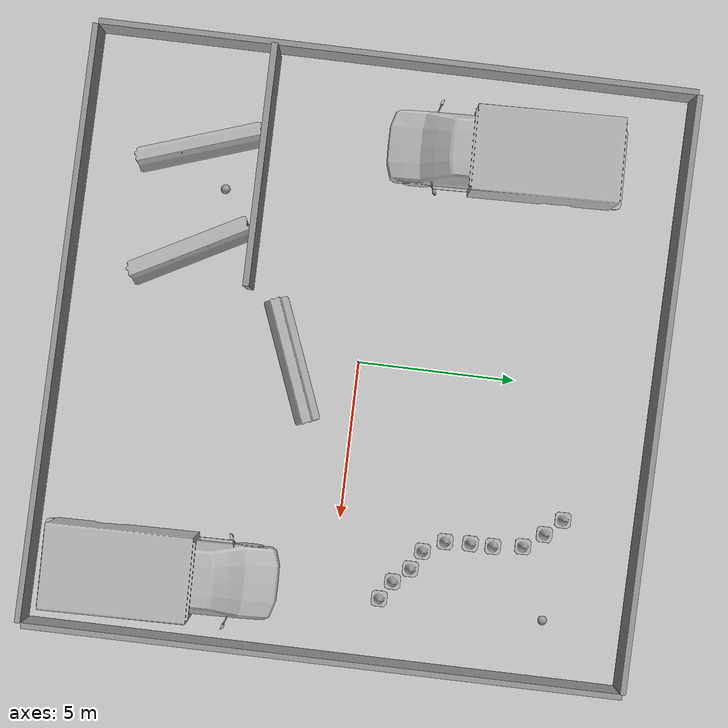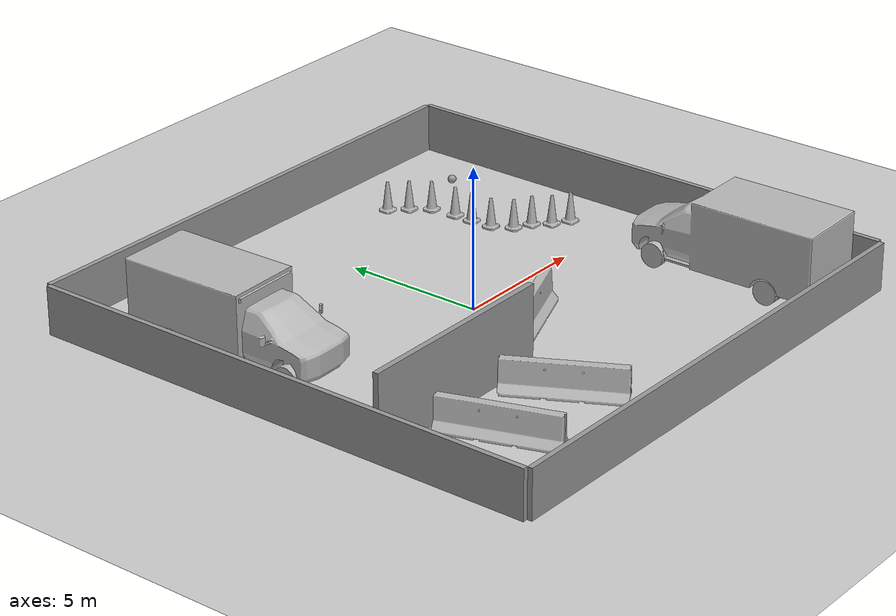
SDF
<sdf version="1.6">
 <world name="default">
  <light name="sun" type="directional">
   <pose>0 0 10 0 -0 0</pose>
   <diffuse>0.8 0.8 0.8 1</diffuse>
   <specular>0.2 0.2 0.2 1</specular>
   <attenuation>
    <range>1000</range>
    <constant>0.9</constant>
    <linear>0.01</linear>
    <quadratic>0.001</quadratic>
   </attenuation>
   <direction>-0.5 0.1 -0.9</direction>
  </light>
  <model name="ground_plane">
   <static>1</static>
   <link name="link">
    <collision name="collision">
     <geometry><plane><normal>0 0 1</normal><size>100 100</size></plane></geometry>
     <surface>
      <contact><collide_bitmask>65535</collide_bitmask></contact>
      <friction><ode><mu>100</mu><mu2>50</mu2></ode></friction>
     </surface>
    </collision>
    <visual name="visual">
     <cast_shadows>0</cast_shadows>
     <geometry><plane><normal>0 0 1</normal><size>100 100</size></plane></geometry>
     <material>
      <script><uri>file://media/materials/scripts/gazebo.material</uri><name>Gazebo/Grey</name></script>
     </material>
    </visual>
   </link>
  </model>
  <gravity>0 0 -9.8</gravity>
  <magnetic_field>6e-06 2.3e-05 -4.2e-05</magnetic_field>
  <atmosphere type="adiabatic"/>
  <physics name="default_physics" default="0" type="ode">
   <max_step_size>0.001</max_step_size>
   <real_time_factor>1</real_time_factor>
   <real_time_update_rate>1000</real_time_update_rate>
  </physics>
  <scene><ambient>0.4 0.4 0.4 1</ambient><background>0.7 0.7 0.7 1</background><shadows>1</shadows></scene>
  <audio><device>default</device></audio>
  <spherical_coordinates>
   <surface_model>EARTH_WGS84</surface_model>
   <latitude_deg>0</latitude_deg>
   <longitude_deg>0</longitude_deg>
   <elevation>0</elevation>
   <heading_deg>0</heading_deg>
  </spherical_coordinates>
  <model name="Confined_Area_20x20">
   <link name="link_1">
    <inertial>
     <mass>44564.1</mass>
     <inertia>
      <ixx>1.32603e+06</ixx>
      <ixy>0</ixy>
      <ixz>0</ixz>
      <iyy>11089.5</iyy>
      <iyz>0</iyz>
      <izz>1.31519e+06</izz>
     </inertia>
    </inertial>
    <pose>-6.97407 -1.86948 0 0 -0 0</pose>
    <visual name="visual">
     <geometry><box><size>0.181322 18.8179 1.7185</size></box></geometry>
     <material>
      <lighting>1</lighting>
      <script><uri>file://media/materials/scripts/gazebo.material</uri><name>Gazebo/Grey</name></script>
      <shader type="vertex"><normal_map>__default__</normal_map></shader>
     </material>
    </visual>
    <collision name="collision">
     <geometry><box><size>0.181322 18.8179 1.7185</size></box></geometry>
     <surface>
      <friction>
       <ode><mu>1</mu><mu2>1</mu2><fdir1>0 0 0</fdir1><slip1>0</slip1><slip2>0</slip2></ode>
       <torsional>
        <coefficient>1</coefficient>
        <patch_radius>0</patch_radius>
        <surface_radius>0</surface_radius>
        <use_patch_radius>1</use_patch_radius>
        <ode><slip>0</slip></ode>
       </torsional>
      </friction>
      <bounce><restitution_coefficient>0</restitution_coefficient><threshold>1e+06</threshold></bounce>
      <contact>
       <collide_without_contact>0</collide_without_contact>
       <collide_without_contact_bitmask>1</collide_without_contact_bitmask>
       <collide_bitmask>1</collide_bitmask>
       <ode>
        <soft_cfm>0</soft_cfm>
        <soft_erp>0.2</soft_erp>
        <kp>1e+13</kp>
        <kd>1</kd>
        <max_vel>0.01</max_vel>
        <min_depth>0</min_depth>
       </ode>
       <bullet>
        <split_impulse>1</split_impulse>
        <split_impulse_penetration_threshold>-0.01</split_impulse_penetration_threshold>
        <soft_cfm>0</soft_cfm>
        <soft_erp>0.2</soft_erp>
        <kp>1e+13</kp>
        <kd>1</kd>
       </bullet>
      </contact>
     </surface>
    </collision>
   </link>
   <link name="link_1_clone">
    <inertial>
     <mass>44564.1</mass>
     <inertia>
      <ixx>1.32603e+06</ixx>
      <ixy>0</ixy>
      <ixz>0</ixz>
      <iyy>11089.5</iyy>
      <iyz>0</iyz>
      <izz>1.31519e+06</izz>
     </inertia>
    </inertial>
    <pose>11.9888 -2.03085 0.000703 0 -5.9e-05 0</pose>
    <visual name="visual">
     <geometry><box><size>0.181322 18.8179 1.7185</size></box></geometry>
     <material>
      <lighting>1</lighting>
      <script><uri>file://media/materials/scripts/gazebo.material</uri><name>Gazebo/Grey</name></script>
      <shader type="vertex"><normal_map>__default__</normal_map></shader>
     </material>
    </visual>
    <collision name="collision">
     <geometry><box><size>0.181322 18.8179 1.7185</size></box></geometry>
     <surface>
      <friction>
       <ode><mu>1</mu><mu2>1</mu2><fdir1>0 0 0</fdir1><slip1>0</slip1><slip2>0</slip2></ode>
       <torsional>
        <coefficient>1</coefficient>
        <patch_radius>0</patch_radius>
        <surface_radius>0</surface_radius>
        <use_patch_radius>1</use_patch_radius>
        <ode><slip>0</slip></ode>
       </torsional>
      </friction>
      <bounce><restitution_coefficient>0</restitution_coefficient><threshold>1e+06</threshold></bounce>
      <contact>
       <collide_without_contact>0</collide_without_contact>
       <collide_without_contact_bitmask>1</collide_without_contact_bitmask>
       <collide_bitmask>1</collide_bitmask>
       <ode>
        <soft_cfm>0</soft_cfm>
        <soft_erp>0.2</soft_erp>
        <kp>1e+13</kp>
        <kd>1</kd>
        <max_vel>0.01</max_vel>
        <min_depth>0</min_depth>
       </ode>
       <bullet>
        <split_impulse>1</split_impulse>
        <split_impulse_penetration_threshold>-0.01</split_impulse_penetration_threshold>
        <soft_cfm>0</soft_cfm>
        <soft_erp>0.2</soft_erp>
        <kp>1e+13</kp>
        <kd>1</kd>
       </bullet>
      </contact>
     </surface>
    </collision>
   </link>
   <link name="link_1_clone_0">
    <inertial>
     <mass>44564.1</mass>
     <inertia>
      <ixx>1.32603e+06</ixx>
      <ixy>0</ixy>
      <ixz>0</ixz>
      <iyy>11089.5</iyy>
      <iyz>0</iyz>
      <izz>1.31519e+06</izz>
     </inertia>
    </inertial>
    <pose>2.5112 7.48856 0.000147 -5.9e-05 -1e-06 1.56029</pose>
    <visual name="visual">
     <geometry><box><size>0.181322 18.8179 1.7185</size></box></geometry>
     <material>
      <lighting>1</lighting>
      <script><uri>file://media/materials/scripts/gazebo.material</uri><name>Gazebo/Grey</name></script>
      <shader type="vertex"><normal_map>__default__</normal_map></shader>
     </material>
    </visual>
    <collision name="collision">
     <geometry><box><size>0.181322 18.8179 1.7185</size></box></geometry>
     <surface>
      <friction>
       <ode><mu>1</mu><mu2>1</mu2><fdir1>0 0 0</fdir1><slip1>0</slip1><slip2>0</slip2></ode>
       <torsional>
        <coefficient>1</coefficient>
        <patch_radius>0</patch_radius>
        <surface_radius>0</surface_radius>
        <use_patch_radius>1</use_patch_radius>
        <ode><slip>0</slip></ode>
       </torsional>
      </friction>
      <bounce><restitution_coefficient>0</restitution_coefficient><threshold>1e+06</threshold></bounce>
      <contact>
       <collide_without_contact>0</collide_without_contact>
       <collide_without_contact_bitmask>1</collide_without_contact_bitmask>
       <collide_bitmask>1</collide_bitmask>
       <ode>
        <soft_cfm>0</soft_cfm>
        <soft_erp>0.2</soft_erp>
        <kp>1e+13</kp>
        <kd>1</kd>
        <max_vel>0.01</max_vel>
        <min_depth>0</min_depth>
       </ode>
       <bullet>
        <split_impulse>1</split_impulse>
        <split_impulse_penetration_threshold>-0.01</split_impulse_penetration_threshold>
        <soft_cfm>0</soft_cfm>
        <soft_erp>0.2</soft_erp>
        <kp>1e+13</kp>
        <kd>1</kd>
       </bullet>
      </contact>
     </surface>
    </collision>
   </link>
   <link name="link_1_clone_0_clone">
    <inertial>
     <mass>44564.1</mass>
     <inertia>
      <ixx>1.32603e+06</ixx>
      <ixy>0</ixy>
      <ixz>0</ixz>
      <iyy>11089.5</iyy>
      <iyz>0</iyz>
      <izz>1.31519e+06</izz>
     </inertia>
    </inertial>
    <pose>2.51624 -11.4629 0.000295 -0.000118 -2e-06 1.56029</pose>
    <visual name="visual">
     <geometry><box><size>0.181322 18.8179 1.7185</size></box></geometry>
     <material>
      <lighting>1</lighting>
      <script><uri>file://media/materials/scripts/gazebo.material</uri><name>Gazebo/Grey</name></script>
      <shader type="vertex"><normal_map>__default__</normal_map></shader>
     </material>
    </visual>
    <collision name="collision">
     <geometry><box><size>0.181322 18.8179 1.7185</size></box></geometry>
     <surface>
      <friction>
       <ode><mu>1</mu><mu2>1</mu2><fdir1>0 0 0</fdir1><slip1>0</slip1><slip2>0</slip2></ode>
       <torsional>
        <coefficient>1</coefficient>
        <patch_radius>0</patch_radius>
        <surface_radius>0</surface_radius>
        <use_patch_radius>1</use_patch_radius>
        <ode><slip>0</slip></ode>
       </torsional>
      </friction>
      <bounce><restitution_coefficient>0</restitution_coefficient><threshold>1e+06</threshold></bounce>
      <contact>
       <collide_without_contact>0</collide_without_contact>
       <collide_without_contact_bitmask>1</collide_without_contact_bitmask>
       <collide_bitmask>1</collide_bitmask>
       <ode>
        <soft_cfm>0</soft_cfm>
        <soft_erp>0.2</soft_erp>
        <kp>1e+13</kp>
        <kd>1</kd>
        <max_vel>0.01</max_vel>
        <min_depth>0</min_depth>
       </ode>
       <bullet>
        <split_impulse>1</split_impulse>
        <split_impulse_penetration_threshold>-0.01</split_impulse_penetration_threshold>
        <soft_cfm>0</soft_cfm>
        <soft_erp>0.2</soft_erp>
        <kp>1e+13</kp>
        <kd>1</kd>
       </bullet>
      </contact>
     </surface>
    </collision>
   </link>
   <static>0</static>
   <pose>-2.61209 1.98312 0.85925 0 -0 0</pose>
  </model>
  <model name="ambulance">
   <static>1</static>
   <link name="link">
    <collision name="collision">
     <geometry>
      <mesh><scale>0.0254 0.0254 0.0254</scale><uri>model://ambulance/meshes/ambulance.obj</uri></mesh>
     </geometry>
    </collision>
    <visual name="visual">
     <geometry>
      <mesh><scale>0.0254 0.0254 0.0254</scale><uri>model://ambulance/meshes/ambulance.obj</uri></mesh>
     </geometry>
    </visual>
   </link>
   <pose>-6.96868 3.95751 0 0 -0 0.024093</pose>
  </model>
  <model name="jersey_barrier">
   <static>1</static>
   <link name="link">
    <visual name="visual">
     <geometry><mesh><uri>model://jersey_barrier/meshes/jersey_barrier.dae</uri></mesh></geometry>
    </visual>
    <collision name="upright">
     <pose>0 0 0.5715 0 -0 0</pose>
     <geometry><box><size>4.06542 0.3063 1.143</size></box></geometry>
    </collision>
    <collision name="base">
     <pose>0 0 0.032258 0 -0 0</pose>
     <geometry><box><size>4.06542 0.8107 0.064516</size></box></geometry>
    </collision>
    <collision name="base2">
     <pose>0 0 0.1 0 -0 0</pose>
     <geometry><box><size>4.06542 0.65 0.1</size></box></geometry>
    </collision>
    <collision name="base3">
     <pose>0 0 0.2 0 -0 0</pose>
     <geometry><box><size>4.06542 0.5 0.1</size></box></geometry>
    </collision>
    <collision name="left-angle">
     <pose>0 -0.224 0.2401 0.9 -0 0</pose>
     <geometry><box><size>4.06542 0.5 0.064516</size></box></geometry>
    </collision>
    <collision name="right-angle">
     <pose>0 0.224 0.2401 -0.9 0 0</pose>
     <geometry><box><size>4.06542 0.5 0.064516</size></box></geometry>
    </collision>
   </link>
   <pose>0.20894 -2.12336 0 0 -0 0.372585</pose>
  </model>
  <model name="jersey_barrier_clone">
   <static>1</static>
   <link name="link">
    <visual name="visual">
     <geometry><mesh><uri>model://jersey_barrier/meshes/jersey_barrier.dae</uri></mesh></geometry>
    </visual>
    <collision name="upright">
     <pose>0 0 0.5715 0 -0 0</pose>
     <geometry><box><size>4.06542 0.3063 1.143</size></box></geometry>
    </collision>
    <collision name="base">
     <pose>0 0 0.032258 0 -0 0</pose>
     <geometry><box><size>4.06542 0.8107 0.064516</size></box></geometry>
    </collision>
    <collision name="base2">
     <pose>0 0 0.1 0 -0 0</pose>
     <geometry><box><size>4.06542 0.65 0.1</size></box></geometry>
    </collision>
    <collision name="base3">
     <pose>0 0 0.2 0 -0 0</pose>
     <geometry><box><size>4.06542 0.5 0.1</size></box></geometry>
    </collision>
    <collision name="left-angle">
     <pose>0 -0.224 0.2401 0.9 -0 0</pose>
     <geometry><box><size>4.06542 0.5 0.064516</size></box></geometry>
    </collision>
    <collision name="right-angle">
     <pose>0 0.224 0.2401 -0.9 0 0</pose>
     <geometry><box><size>4.06542 0.5 0.064516</size></box></geometry>
    </collision>
   </link>
   <pose>-6.23391 -5.81695 0 0 0 -1.24453</pose>
  </model>
  <model name="jersey_barrier_clone_0">
   <static>1</static>
   <link name="link">
    <visual name="visual">
     <geometry><mesh><uri>model://jersey_barrier/meshes/jersey_barrier.dae</uri></mesh></geometry>
    </visual>
    <collision name="upright">
     <pose>0 0 0.5715 0 -0 0</pose>
     <geometry><box><size>4.06542 0.3063 1.143</size></box></geometry>
    </collision>
    <collision name="base">
     <pose>0 0 0.032258 0 -0 0</pose>
     <geometry><box><size>4.06542 0.8107 0.064516</size></box></geometry>
    </collision>
    <collision name="base2">
     <pose>0 0 0.1 0 -0 0</pose>
     <geometry><box><size>4.06542 0.65 0.1</size></box></geometry>
    </collision>
    <collision name="base3">
     <pose>0 0 0.2 0 -0 0</pose>
     <geometry><box><size>4.06542 0.5 0.1</size></box></geometry>
    </collision>
    <collision name="left-angle">
     <pose>0 -0.224 0.2401 0.9 -0 0</pose>
     <geometry><box><size>4.06542 0.5 0.064516</size></box></geometry>
    </collision>
    <collision name="right-angle">
     <pose>0 0.224 0.2401 -0.9 0 0</pose>
     <geometry><box><size>4.06542 0.5 0.064516</size></box></geometry>
    </collision>
   </link>
   <pose>-2.9068 -5.75682 0 0 0 -1.07939</pose>
  </model>
  <model name="ambulance_clone">
   <static>1</static>
   <link name="link">
    <collision name="collision">
     <geometry>
      <mesh><scale>0.0254 0.0254 0.0254</scale><uri>model://ambulance/meshes/ambulance.obj</uri></mesh>
     </geometry>
    </collision>
    <visual name="visual">
     <geometry>
      <mesh><scale>0.0254 0.0254 0.0254</scale><uri>model://ambulance/meshes/ambulance.obj</uri></mesh>
     </geometry>
    </visual>
   </link>
   <pose>7.29364 -5.54195 0 0 -0 -3.12626</pose>
  </model>
  <model name="grey_wall">
   <static>1</static>
   <link name="link">
    <pose>0 0 1.4 0 -0 0</pose>
    <collision name="collision"><geometry><box><size>7.5 0.2 2.8</size></box></geometry></collision>
    <visual name="visual">
     <cast_shadows>0</cast_shadows>
     <geometry><box><size>7.5 0.2 2.8</size></box></geometry>
     <material>
      <script>
       <uri>model://grey_wall/materials/scripts</uri>
       <uri>model://grey_wall/materials/textures</uri>
       <name>vrc/grey_wall</name>
      </script>
     </material>
    </visual>
   </link>
   <pose>-5.63527 -3.70146 0 0 -0 0</pose>
  </model>
  <model name="Construction Cone">
   <link name="link">
    <collision name="collision">
     <geometry>
      <mesh><scale>10 10 10</scale><uri>model://construction_cone/meshes/construction_cone.dae</uri></mesh>
     </geometry>
    </collision>
    <visual name="visual">
     <geometry>
      <mesh><scale>10 10 10</scale><uri>model://construction_cone/meshes/construction_cone.dae</uri></mesh>
     </geometry>
    </visual>
    <inertial>
     <inertia><ixx>1</ixx><ixy>0</ixy><ixz>0</ixz><iyy>1</iyy><iyz>0</iyz><izz>1</izz></inertia>
     <mass>1</mass>
    </inertial>
   </link>
   <pose>4.24031 7.07411 -0 0 -1e-06 0</pose>
  </model>
  <model name="Construction Cone_0">
   <link name="link">
    <collision name="collision">
     <geometry>
      <mesh><scale>10 10 10</scale><uri>model://construction_cone/meshes/construction_cone.dae</uri></mesh>
     </geometry>
    </collision>
    <visual name="visual">
     <geometry>
      <mesh><scale>10 10 10</scale><uri>model://construction_cone/meshes/construction_cone.dae</uri></mesh>
     </geometry>
    </visual>
    <inertial>
     <inertia><ixx>1</ixx><ixy>0</ixy><ixz>0</ixz><iyy>1</iyy><iyz>0</iyz><izz>1</izz></inertia>
     <mass>1</mass>
    </inertial>
   </link>
   <pose>4.75958 6.53981 -5e-06 -4e-06 1e-06 0</pose>
  </model>
  <model name="Construction Cone_1">
   <link name="link">
    <collision name="collision">
     <geometry>
      <mesh><scale>10 10 10</scale><uri>model://construction_cone/meshes/construction_cone.dae</uri></mesh>
     </geometry>
    </collision>
    <visual name="visual">
     <geometry>
      <mesh><scale>10 10 10</scale><uri>model://construction_cone/meshes/construction_cone.dae</uri></mesh>
     </geometry>
    </visual>
    <inertial>
     <inertia><ixx>1</ixx><ixy>0</ixy><ixz>0</ixz><iyy>1</iyy><iyz>0</iyz><izz>1</izz></inertia>
     <mass>1</mass>
    </inertial>
   </link>
   <pose>5.22333 5.90356 -0 0 -0 0</pose>
  </model>
  <model name="Construction Cone_2">
   <link name="link">
    <collision name="collision">
     <geometry>
      <mesh><scale>10 10 10</scale><uri>model://construction_cone/meshes/construction_cone.dae</uri></mesh>
     </geometry>
    </collision>
    <visual name="visual">
     <geometry>
      <mesh><scale>10 10 10</scale><uri>model://construction_cone/meshes/construction_cone.dae</uri></mesh>
     </geometry>
    </visual>
    <inertial>
     <inertia><ixx>1</ixx><ixy>0</ixy><ixz>0</ixz><iyy>1</iyy><iyz>0</iyz><izz>1</izz></inertia>
     <mass>1</mass>
    </inertial>
   </link>
   <pose>5.33245 4.95179 -5e-06 -4e-06 1e-06 0</pose>
  </model>
  <model name="Construction Cone_3">
   <link name="link">
    <collision name="collision">
     <geometry>
      <mesh><scale>10 10 10</scale><uri>model://construction_cone/meshes/construction_cone.dae</uri></mesh>
     </geometry>
    </collision>
    <visual name="visual">
     <geometry>
      <mesh><scale>10 10 10</scale><uri>model://construction_cone/meshes/construction_cone.dae</uri></mesh>
     </geometry>
    </visual>
    <inertial>
     <inertia><ixx>1</ixx><ixy>0</ixy><ixz>0</ixz><iyy>1</iyy><iyz>0</iyz><izz>1</izz></inertia>
     <mass>1</mass>
    </inertial>
   </link>
   <pose>5.33014 4.22744 -0 0 -0 0</pose>
  </model>
  <model name="Construction Cone_4">
   <link name="link">
    <collision name="collision">
     <geometry>
      <mesh><scale>10 10 10</scale><uri>model://construction_cone/meshes/construction_cone.dae</uri></mesh>
     </geometry>
    </collision>
    <visual name="visual">
     <geometry>
      <mesh><scale>10 10 10</scale><uri>model://construction_cone/meshes/construction_cone.dae</uri></mesh>
     </geometry>
    </visual>
    <inertial>
     <inertia><ixx>1</ixx><ixy>0</ixy><ixz>0</ixz><iyy>1</iyy><iyz>0</iyz><izz>1</izz></inertia>
     <mass>1</mass>
    </inertial>
   </link>
   <pose>5.36183 3.42039 -0 0 -0 0</pose>
  </model>
  <model name="Construction Cone_5">
   <link name="link">
    <collision name="collision">
     <geometry>
      <mesh><scale>10 10 10</scale><uri>model://construction_cone/meshes/construction_cone.dae</uri></mesh>
     </geometry>
    </collision>
    <visual name="visual">
     <geometry>
      <mesh><scale>10 10 10</scale><uri>model://construction_cone/meshes/construction_cone.dae</uri></mesh>
     </geometry>
    </visual>
    <inertial>
     <inertia><ixx>1</ixx><ixy>0</ixy><ixz>0</ixz><iyy>1</iyy><iyz>0</iyz><izz>1</izz></inertia>
     <mass>1</mass>
    </inertial>
   </link>
   <pose>5.75347 2.73807 -0 0 -0 0</pose>
  </model>
  <model name="Construction Cone_6">
   <link name="link">
    <collision name="collision">
     <geometry>
      <mesh><scale>10 10 10</scale><uri>model://construction_cone/meshes/construction_cone.dae</uri></mesh>
     </geometry>
    </collision>
    <visual name="visual">
     <geometry>
      <mesh><scale>10 10 10</scale><uri>model://construction_cone/meshes/construction_cone.dae</uri></mesh>
     </geometry>
    </visual>
    <inertial>
     <inertia><ixx>1</ixx><ixy>0</ixy><ixz>0</ixz><iyy>1</iyy><iyz>0</iyz><izz>1</izz></inertia>
     <mass>1</mass>
    </inertial>
   </link>
   <pose>6.35896 2.41845 -0 0 -0 0</pose>
  </model>
  <model name="Construction Cone_6_clone">
   <link name="link">
    <collision name="collision">
     <geometry>
      <mesh><scale>10 10 10</scale><uri>model://construction_cone/meshes/construction_cone.dae</uri></mesh>
     </geometry>
    </collision>
    <visual name="visual">
     <geometry>
      <mesh><scale>10 10 10</scale><uri>model://construction_cone/meshes/construction_cone.dae</uri></mesh>
     </geometry>
    </visual>
    <inertial>
     <inertia><ixx>1</ixx><ixy>0</ixy><ixz>0</ixz><iyy>1</iyy><iyz>0</iyz><izz>1</izz></inertia>
     <mass>1</mass>
    </inertial>
   </link>
   <pose>6.82449 1.9036 -0 0 -0 0</pose>
  </model>
  <model name="Construction Cone_6_clone_0">
   <link name="link">
    <collision name="collision">
     <geometry>
      <mesh><scale>10 10 10</scale><uri>model://construction_cone/meshes/construction_cone.dae</uri></mesh>
     </geometry>
    </collision>
    <visual name="visual">
     <geometry>
      <mesh><scale>10 10 10</scale><uri>model://construction_cone/meshes/construction_cone.dae</uri></mesh>
     </geometry>
    </visual>
    <inertial>
     <inertia><ixx>1</ixx><ixy>0</ixy><ixz>0</ixz><iyy>1</iyy><iyz>0</iyz><izz>1</izz></inertia>
     <mass>1</mass>
    </inertial>
   </link>
   <pose>7.41199 1.54359 -4e-06 4e-06 -1e-06 0</pose>
  </model>
  <model name="Sphere_radius_15cm">
   <link name="link">
    <inertial>
     <mass>1</mass>
     <inertia><ixx>0.1</ixx><ixy>0</ixy><ixz>0</ixz><iyy>0.1</iyy><iyz>0</iyz><izz>0.1</izz></inertia>
    </inertial>
    <visual name="visual">
     <geometry><sphere><radius>0.15</radius></sphere></geometry>
     <material>
      <script><name>Gazebo/Grey</name><uri>file://media/materials/scripts/gazebo.material</uri></script>
      <shader type="vertex"><normal_map>__default__</normal_map></shader>
      <ambient>0.3 0.3 0.3 1</ambient>
      <diffuse>0.7 0.7 0.7 1</diffuse>
      <specular>0.01 0.01 0.01 1</specular>
      <emissive>0 0 0 1</emissive>
     </material>
    </visual>
    <collision name="collision">
     <geometry><sphere><radius>0.15</radius></sphere></geometry>
     <surface>
      <friction>
       <ode><mu>1</mu><mu2>1</mu2><fdir1>0 0 0</fdir1><slip1>0</slip1><slip2>0</slip2></ode>
       <torsional>
        <coefficient>1</coefficient>
        <patch_radius>0</patch_radius>
        <surface_radius>0</surface_radius>
        <use_patch_radius>1</use_patch_radius>
        <ode><slip>0</slip></ode>
       </torsional>
      </friction>
      <bounce><restitution_coefficient>0</restitution_coefficient><threshold>1e+06</threshold></bounce>
      <contact>
       <collide_without_contact>0</collide_without_contact>
       <collide_without_contact_bitmask>1</collide_without_contact_bitmask>
       <collide_bitmask>1</collide_bitmask>
       <ode>
        <soft_cfm>0</soft_cfm>
        <soft_erp>0.2</soft_erp>
        <kp>1e+13</kp>
        <kd>1</kd>
        <max_vel>0.01</max_vel>
        <min_depth>0</min_depth>
       </ode>
       <bullet>
        <split_impulse>1</split_impulse>
        <split_impulse_penetration_threshold>-0.01</split_impulse_penetration_threshold>
        <soft_cfm>0</soft_cfm>
        <soft_erp>0.2</soft_erp>
        <kp>1e+13</kp>
        <kd>1</kd>
       </bullet>
      </contact>
     </surface>
    </collision>
   </link>
   <static>0</static>
   <pose>7.47804 6.78245 0.15 0 -0 0</pose>
  </model>
  <model name="Sphere_radius_15cm_0">
   <link name="link">
    <inertial>
     <mass>1</mass>
     <inertia><ixx>0.1</ixx><ixy>0</ixy><ixz>0</ixz><iyy>0.1</iyy><iyz>0</iyz><izz>0.1</izz></inertia>
    </inertial>
    <visual name="visual">
     <geometry><sphere><radius>0.15</radius></sphere></geometry>
     <material>
      <script><name>Gazebo/Grey</name><uri>file://media/materials/scripts/gazebo.material</uri></script>
      <shader type="vertex"><normal_map>__default__</normal_map></shader>
      <ambient>0.3 0.3 0.3 1</ambient>
      <diffuse>0.7 0.7 0.7 1</diffuse>
      <specular>0.01 0.01 0.01 1</specular>
      <emissive>0 0 0 1</emissive>
     </material>
    </visual>
    <collision name="collision">
     <geometry><sphere><radius>0.15</radius></sphere></geometry>
     <surface>
      <friction>
       <ode><mu>1</mu><mu2>1</mu2><fdir1>0 0 0</fdir1><slip1>0</slip1><slip2>0</slip2></ode>
       <torsional>
        <coefficient>1</coefficient>
        <patch_radius>0</patch_radius>
        <surface_radius>0</surface_radius>
        <use_patch_radius>1</use_patch_radius>
        <ode><slip>0</slip></ode>
       </torsional>
      </friction>
      <bounce><restitution_coefficient>0</restitution_coefficient><threshold>1e+06</threshold></bounce>
      <contact>
       <collide_without_contact>0</collide_without_contact>
       <collide_without_contact_bitmask>1</collide_without_contact_bitmask>
       <collide_bitmask>1</collide_bitmask>
       <ode>
        <soft_cfm>0</soft_cfm>
        <soft_erp>0.2</soft_erp>
        <kp>1e+13</kp>
        <kd>1</kd>
        <max_vel>0.01</max_vel>
        <min_depth>0</min_depth>
       </ode>
       <bullet>
        <split_impulse>1</split_impulse>
        <split_impulse_penetration_threshold>-0.01</split_impulse_penetration_threshold>
        <soft_cfm>0</soft_cfm>
        <soft_erp>0.2</soft_erp>
        <kp>1e+13</kp>
        <kd>1</kd>
       </bullet>
      </contact>
     </surface>
    </collision>
   </link>
   <static>0</static>
   <pose>-4.97505 -4.86567 0.15 0 -0 0</pose>
  </model>
 </world>
</sdf>
